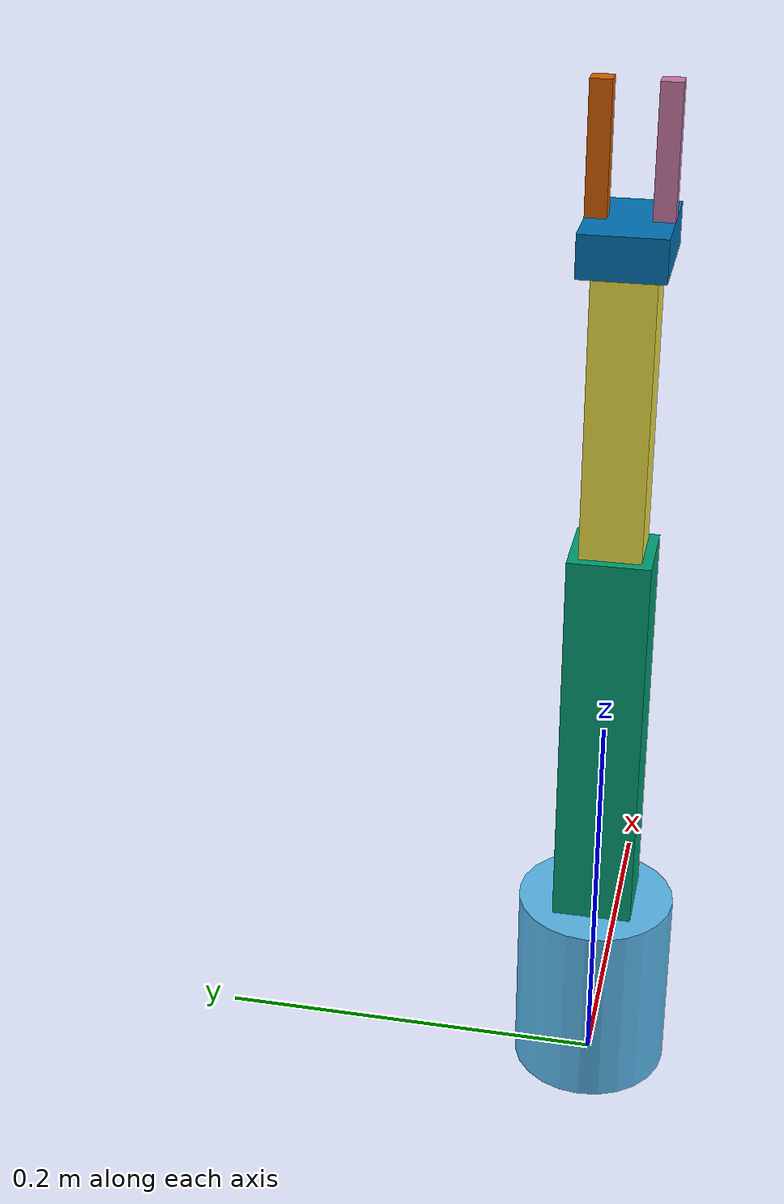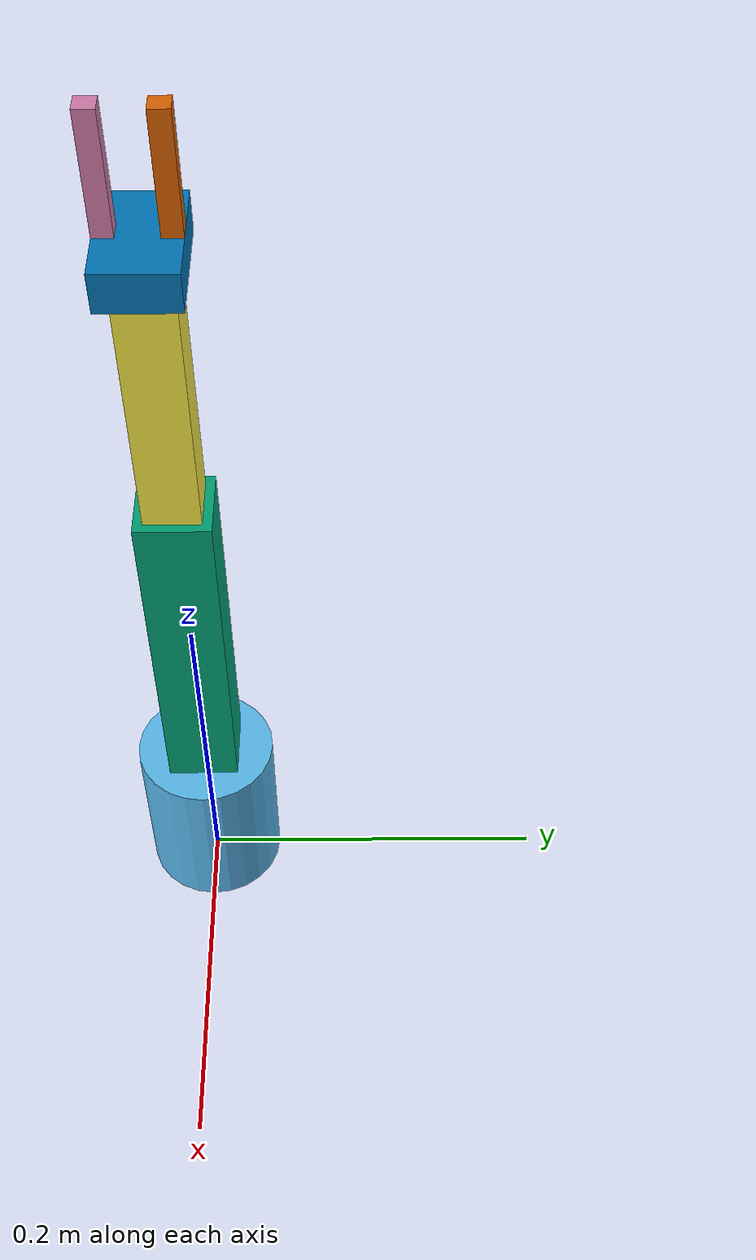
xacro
<?xml version="1.0"?>
<robot xmlns:xacro="http://www.ros.org/wiki/xacro" name="arm">

  <link name="base_link"/>

  <!-- Shoulder -->
  <link name="shoulder_link">
    <visual>
      <geometry><cylinder radius="0.04" length="0.1"/></geometry>
    </visual>
    <collision>
      <geometry><cylinder radius="0.04" length="0.1"/></geometry>
    </collision>
    <inertial>
      <mass value="1.0"/>
      <inertia ixx="0.001" ixy="0" ixz="0" iyy="0.001" iyz="0" izz="0.001"/>
    </inertial>
  </link>

  <joint name="shoulder_joint" type="revolute">
    <parent link="base_link"/>
    <child link="shoulder_link"/>
    <origin xyz="0 0 0.05"/>
    <axis xyz="0 0 1"/>
    <limit lower="${-pi}" upper="${pi}" velocity="1.0" effort="10.0"/>
  </joint>

  <!-- Upper Arm -->
  <link name="upper_arm_link">
    <visual>
      <origin xyz="0 0 0.1"/>
      <geometry><box size="0.04 0.04 0.2"/></geometry>
    </visual>
    <collision>
      <origin xyz="0 0 0.1"/>
      <geometry><box size="0.04 0.04 0.2"/></geometry>
    </collision>
    <inertial>
      <mass value="0.8"/>
      <origin xyz="0 0 0.1"/>
      <inertia ixx="0.003" ixy="0" ixz="0" iyy="0.003" iyz="0" izz="0.001"/>
    </inertial>
  </link>

  <joint name="elbow_joint" type="revolute">
    <parent link="shoulder_link"/>
    <child link="upper_arm_link"/>
    <origin xyz="0 0 0.05"/>
    <axis xyz="0 1 0"/>
    <limit lower="${-pi/2}" upper="${pi/2}" velocity="1.0" effort="10.0"/>
  </joint>

  <!-- Forearm -->
  <link name="forearm_link">
    <visual>
      <origin xyz="0 0 0.075"/>
      <geometry><box size="0.03 0.03 0.15"/></geometry>
    </visual>
    <collision>
      <origin xyz="0 0 0.075"/>
      <geometry><box size="0.03 0.03 0.15"/></geometry>
    </collision>
    <inertial>
      <mass value="0.5"/>
      <origin xyz="0 0 0.075"/>
      <inertia ixx="0.001" ixy="0" ixz="0" iyy="0.001" iyz="0" izz="0.0005"/>
    </inertial>
  </link>

  <joint name="wrist_joint" type="revolute">
    <parent link="upper_arm_link"/>
    <child link="forearm_link"/>
    <origin xyz="0 0 0.2"/>
    <axis xyz="0 1 0"/>
    <limit lower="${-pi/2}" upper="${pi/2}" velocity="1.0" effort="5.0"/>
  </joint>

  <!-- Gripper Base -->
  <link name="gripper_base_link">
    <visual>
      <geometry><box size="0.06 0.04 0.02"/></geometry>
    </visual>
    <collision>
      <geometry><box size="0.06 0.04 0.02"/></geometry>
    </collision>
    <inertial>
      <mass value="0.2"/>
      <inertia ixx="0.0001" ixy="0" ixz="0" iyy="0.0001" iyz="0" izz="0.0001"/>
    </inertial>
  </link>

  <joint name="gripper_base_joint" type="fixed">
    <parent link="forearm_link"/>
    <child link="gripper_base_link"/>
    <origin xyz="0 0 0.15"/>
  </joint>

  <!-- Left Finger -->
  <link name="left_finger_link">
    <visual>
      <origin xyz="0 0 0.03"/>
      <geometry><box size="0.01 0.01 0.06"/></geometry>
    </visual>
    <collision>
      <origin xyz="0 0 0.03"/>
      <geometry><box size="0.01 0.01 0.06"/></geometry>
    </collision>
    <inertial>
      <mass value="0.05"/>
      <origin xyz="0 0 0.03"/>
      <inertia ixx="0.00001" ixy="0" ixz="0" iyy="0.00001" iyz="0" izz="0.00001"/>
    </inertial>
  </link>

  <joint name="left_finger_joint" type="prismatic">
    <parent link="gripper_base_link"/>
    <child link="left_finger_link"/>
    <origin xyz="0 0.015 0.01"/>
    <axis xyz="0 1 0"/>
    <limit lower="0.0" upper="0.03" velocity="0.1" effort="5.0"/>
  </joint>

  <!-- Right Finger (mirrored) -->
  <link name="right_finger_link">
    <visual>
      <origin xyz="0 0 0.03"/>
      <geometry><box size="0.01 0.01 0.06"/></geometry>
    </visual>
    <collision>
      <origin xyz="0 0 0.03"/>
      <geometry><box size="0.01 0.01 0.06"/></geometry>
    </collision>
    <inertial>
      <mass value="0.05"/>
      <origin xyz="0 0 0.03"/>
      <inertia ixx="0.00001" ixy="0" ixz="0" iyy="0.00001" iyz="0" izz="0.00001"/>
    </inertial>
  </link>

  <joint name="right_finger_joint" type="prismatic">
    <parent link="gripper_base_link"/>
    <child link="right_finger_link"/>
    <origin xyz="0 -0.015 0.01"/>
    <axis xyz="0 -1 0"/>
    <limit lower="0.0" upper="0.03" velocity="0.1" effort="5.0"/>
  </joint>

  <link name="tool_tip"/>

  <joint name="tool_tip_joint" type="fixed">
    <parent link="gripper_base_link"/>
    <child link="tool_tip"/>
    <origin xyz="0 0 0.06"/>
  </joint>

  <!-- ros2_control -->
  <ros2_control name="ArmSystem" type="system">
    <hardware>
      <plugin>mock_components/GenericSystem</plugin>
    </hardware>
    <joint name="shoulder_joint">
      <command_interface name="position"/>
      <state_interface name="position"/>
      <state_interface name="velocity"/>
    </joint>
    <joint name="elbow_joint">
      <command_interface name="position"/>
      <state_interface name="position"/>
      <state_interface name="velocity"/>
    </joint>
    <joint name="wrist_joint">
      <command_interface name="position"/>
      <state_interface name="position"/>
      <state_interface name="velocity"/>
    </joint>
    <joint name="left_finger_joint">
      <command_interface name="position"/>
      <state_interface name="position"/>
      <state_interface name="velocity"/>
    </joint>
    <joint name="right_finger_joint">
      <command_interface name="position"/>
      <state_interface name="position"/>
      <state_interface name="velocity"/>
    </joint>
  </ros2_control>

</robot>
